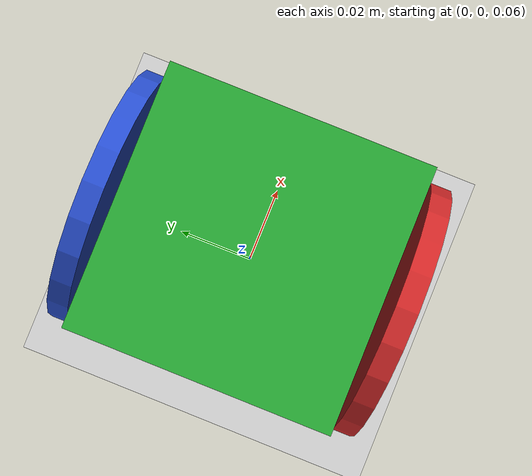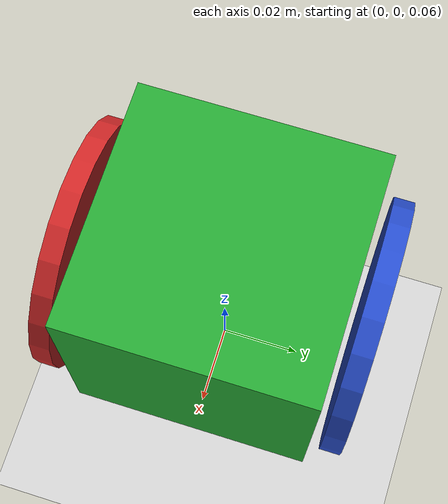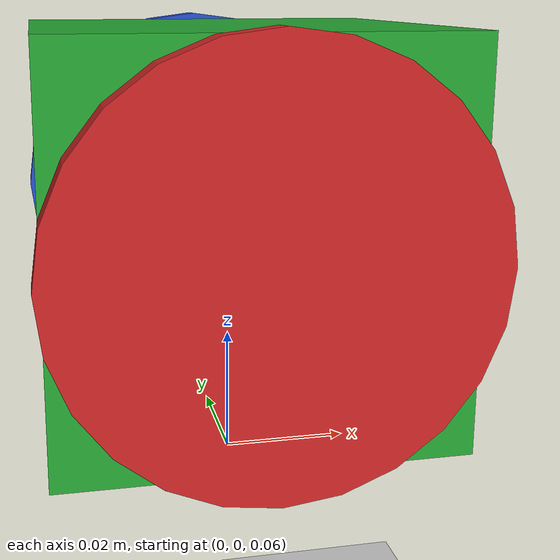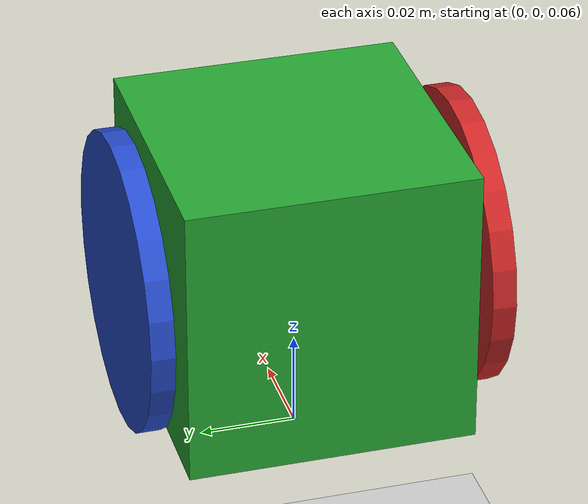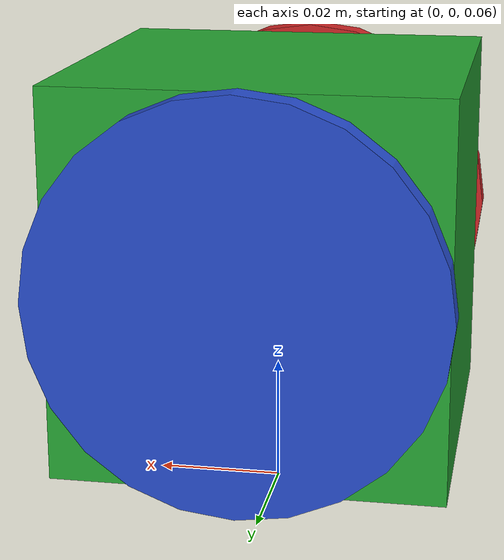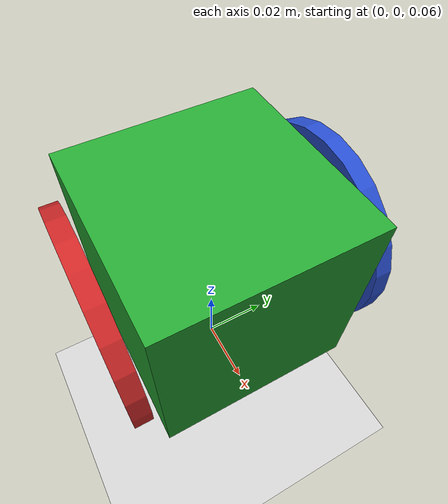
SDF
<?xml version="1.0" ?>
<sdf version="1.4">
  <world name="default">
    <include>
      <uri>model://ground_plane</uri>
    </include>

    <include>
      <uri>model://sun</uri>
    </include>

    <include>
      <uri>model://simple_vehicle</uri>
      <name>simple_vehicle1</name>
      <pose>0 0 0.1 0 0 0</pose>
    </include>

  </world>
</sdf>

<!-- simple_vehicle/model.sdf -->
<sdf version='1.4'>
  <model name="simple_vehicle">
        <static>0</static>
        <!-- Give the base link a unique name -->
        <link name="vehicle_body">

            <!-- Offset the base by half the lenght of the cylinder -->
            <pose>0 0 0 0 0 0</pose>
            <inertial>
              <mass>1.0</mass>
              <inertia>
                <ixx>0.0006</ixx>
                <iyy>0.0006</iyy>
                <izz>0.0006</izz>
                <ixy>0</ixy>
                <ixz>0</ixz>
                <iyz>0</iyz>
              </inertia>
            </inertial>

            <collision name="vehicle_body_collision">
              <geometry>
                <box>
                  <size>0.060 0.060 0.060</size>
                </box>
              </geometry>
                <surface>
		<friction>
		<ode>
		    <mu>0.0</mu>
		    <mu2>0.0</mu2>
		</ode>
		</friction>
		<contact>
		<ode>
		   <kp>1000000.0</kp>
		   <kd>1000000.0</kd>
		   <min_depth>0</min_depth>
		</ode>
		</contact>
	      </surface>
            </collision>

            <!-- The visual is mostly a copy of the collision -->
            <visual name="vehicle_body_visual">
              <geometry>
                <box>
                  <size>0.060 0.060 0.060</size>
                </box>
              </geometry>
              <material>
                <script>
                  <uri>file://media/materials/scripts/gazebo.material</uri>
                  <name>Gazebo/Green</name>
                </script>
              </material>
            </visual>
        </link>

        <!-- Give the base link a unique name -->
        <link name="left_wheel">

            <!-- Vertically offset the top cylinder by the length of the bottom
                cylinder and half the length of this cylinder. -->
            <pose>0 0.035 0 1.57 0 0</pose>

            <inertial>
              <mass>0.1</mass>
              <inertia>
                <ixx>2.33333333333e-05</ixx>
                <iyy>2.33333333333e-05</iyy>
                <izz>4.5e-05</izz>
                <ixy>0</ixy>
                <ixz>0</ixz>
                <iyz>0</iyz>
              </inertia>
            </inertial>

            <collision name="left_wheel_collision">
              <geometry>
                <cylinder>
                  <!-- Radius and length provided by Velodyne -->
                  <radius>0.031</radius>
                  <length>0.005</length>
                </cylinder>
              </geometry>
              <surface>
		<friction>
		<ode>
		    <mu>30.0</mu>
		    <mu2>30.0</mu2>
		</ode>
		</friction>
		<contact>
		<ode>
		   <kp>1000000.0</kp>
		   <kd>1000000.0</kd>
		   <min_depth>0.0</min_depth>
		</ode>
		</contact>
	      </surface>
            </collision>

            <!-- The visual is mostly a copy of the collision -->
            <visual name="left_wheel_visual">
              <geometry>
                <cylinder>
                  <radius>0.031</radius>
                  <length>0.005</length>
                </cylinder>
              </geometry>
              <material>
                <script>
                  <uri>file://media/materials/scripts/gazebo.material</uri>
                  <name>Gazebo/Blue</name>
                </script>
              </material>
            </visual>
        </link>

	<!-- Give the base link a unique name -->
        <link name="right_wheel">

            <!-- Vertically offset the top cylinder by the length of the bottom
                cylinder and half the length of this cylinder. -->
            <pose>0 -0.035 0 1.57 0 0</pose>

            <inertial>
              <mass>0.1</mass>
              <inertia>
                <ixx>2.33333333333e-05</ixx>
                <iyy>2.33333333333e-05</iyy>
                <izz>4.5e-05</izz>
                <ixy>0</ixy>
                <ixz>0</ixz>
                <iyz>0</iyz>
              </inertia>
            </inertial>

            <collision name="right_wheel_collision">
              <geometry>
                <cylinder>
                  <!-- Radius and length provided by Velodyne -->
                  <radius>0.031</radius>
                  <length>0.005</length>
                </cylinder>
              </geometry>
	      <surface>
		<friction>
		<ode>
		    <mu>30.0</mu>
		    <mu2>30.0</mu2>
		</ode>
		</friction>
		<contact>
		<ode>
		   <kp>1000000.0</kp>
		   <kd>1000000.0</kd>
		   <min_depth>0.0</min_depth>
		</ode>
		</contact>
	      </surface>
            </collision>

            <!-- The visual is mostly a copy of the collision -->
            <visual name="right_wheel_visual">
              <geometry>
                <cylinder>
                  <radius>0.031</radius>
                  <length>0.005</length>
                </cylinder>
              </geometry>
              <material>
                <script>
                  <uri>file://media/materials/scripts/gazebo.material</uri>
                  <name>Gazebo/Red</name>
                </script>
              </material>
            </visual>
        </link>

        <!-- Each joint must have a unique name -->
        <joint type="revolute" name="left_wheel_joint">
          <pose>0 0 0 0 0 0</pose>
          <parent>vehicle_body</parent>
          <child>left_wheel</child>
          <!-- The axis defines the joint's degree of freedom -->
          <axis>
            <xyz>0 1 0</xyz>
            <!-- Limit refers to the range of motion of the joint -->
            <limit>
              <!-- Use a very large number to indicate a continuous revolution -->
              <lower>-10000000000000000</lower>
              <upper>10000000000000000</upper>
            </limit>
          </axis>
        </joint>

        <!-- Each joint must have a unique name -->
        <joint type="revolute" name="right_wheel_joint">
          <pose>0 0 0 0 0 0</pose>
          <parent>vehicle_body</parent>
          <child>right_wheel</child>
          <!-- The axis defines the joint's degree of freedom -->
          <axis>
            <xyz>0 1 0</xyz>
            <!-- Limit refers to the range of motion of the joint -->
            <limit>
              <!-- Use a very large number to indicate a continuous revolution -->
              <lower>-10000000000000000</lower>
              <upper>10000000000000000</upper>
            </limit>
          </axis>
        </joint>

	<plugin name="set_speed_joint_plugin" filename="libset_speed_joint_plugin.so">
		<namespace_model>simple_robot</namespace_model>
		<activate_pid_control>yes</activate_pid_control>
		<wheel_kp>0.1</wheel_kp>
		<wheel_ki>0.0</wheel_ki>
		<wheel_kd>0.0</wheel_kd>
	</plugin>

  </model>
</sdf>
